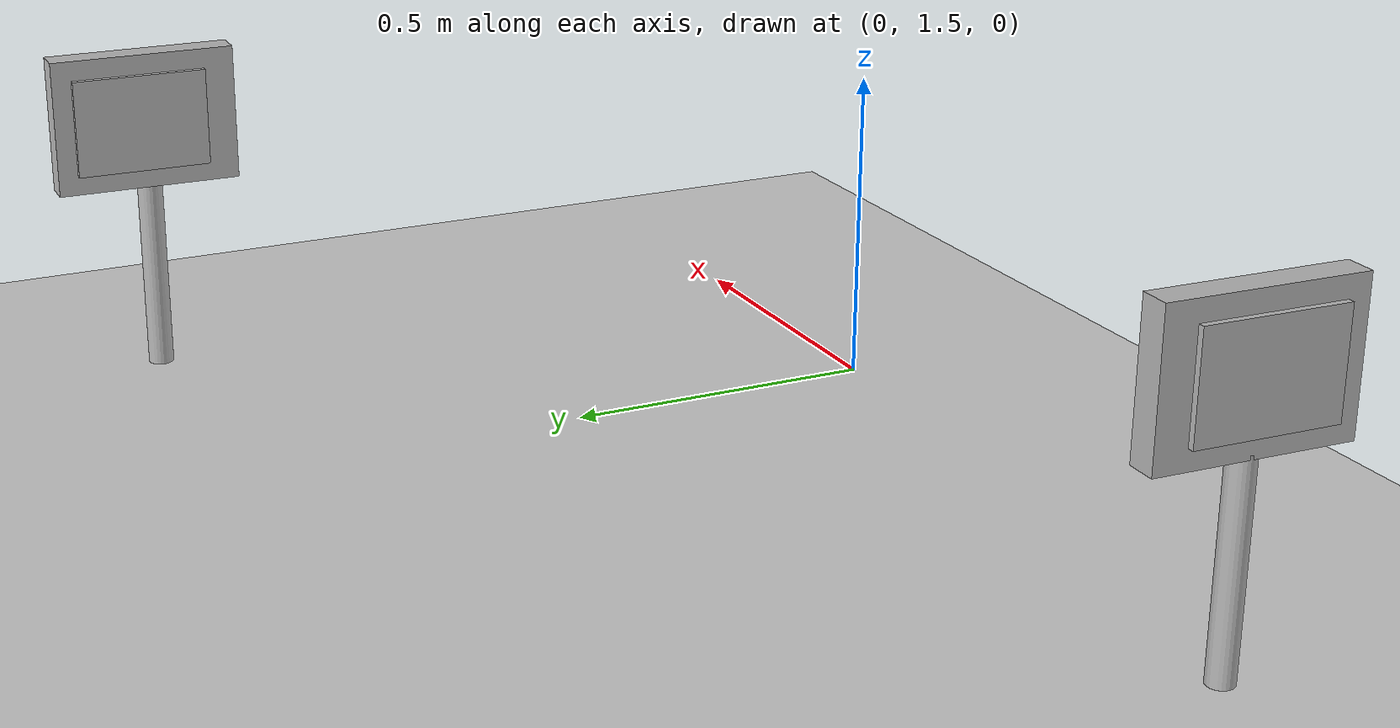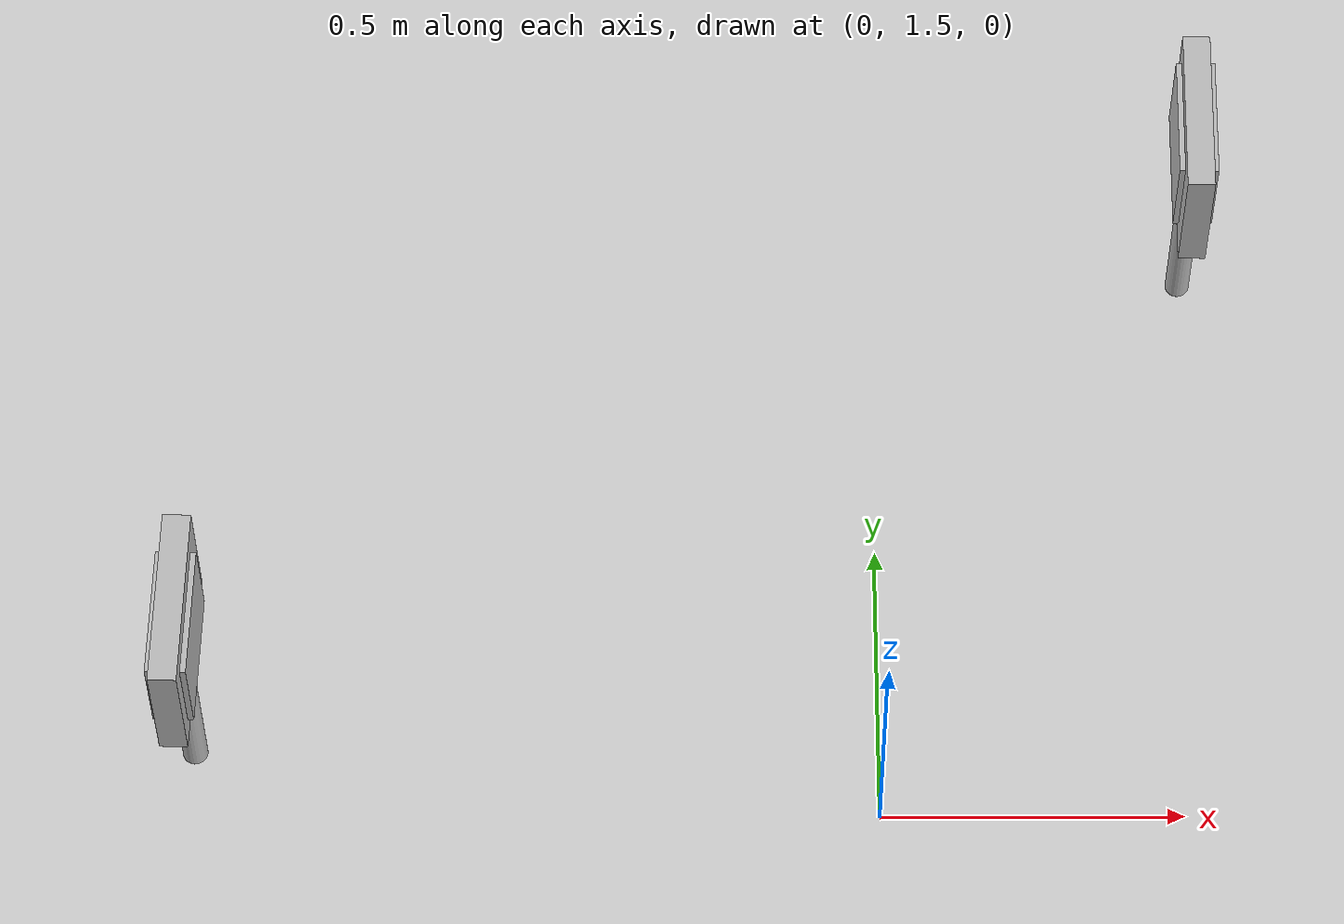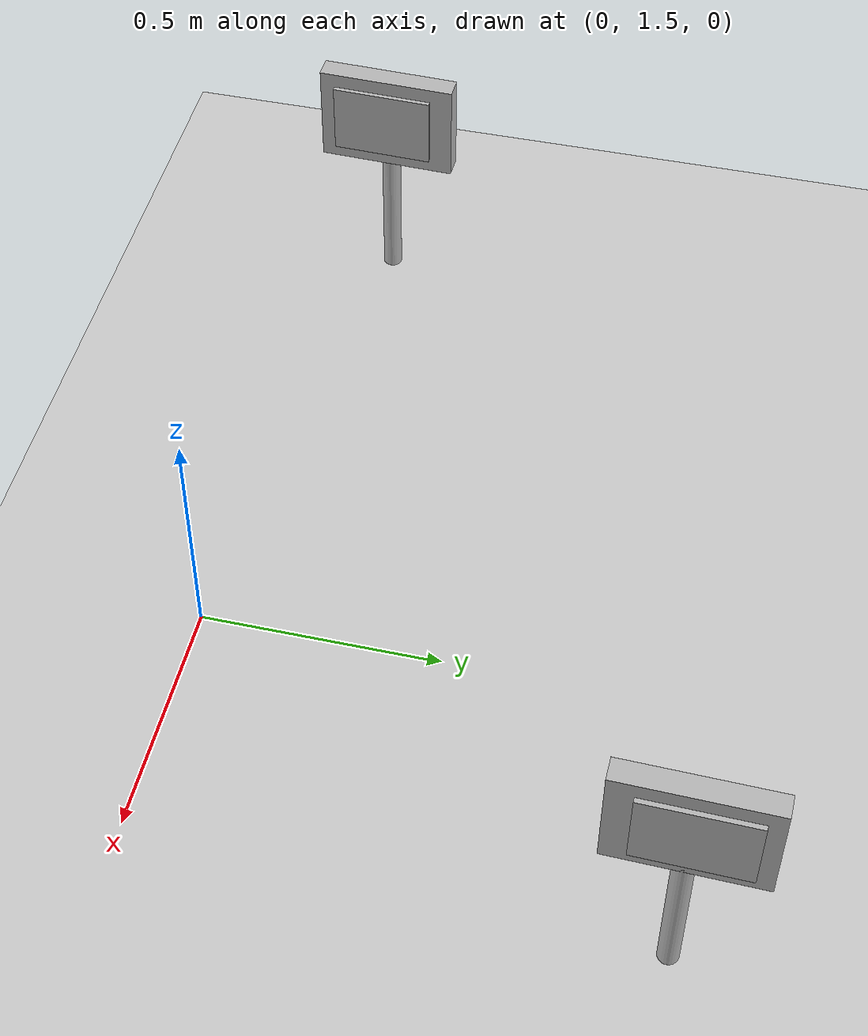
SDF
<sdf version="1.7">
 <world name="default">
  <model name="ground_plane">
   <static>1</static>
   <link name="link">
    <collision name="collision">
     <geometry><plane><normal>0 0 1</normal><size>100 100</size></plane></geometry>
     <surface>
      <contact><collide_bitmask>65535</collide_bitmask></contact>
      <friction><ode><mu>100</mu><mu2>50</mu2></ode></friction>
     </surface>
    </collision>
    <visual name="visual">
     <cast_shadows>0</cast_shadows>
     <geometry><plane><normal>0 0 1</normal><size>100 100</size></plane></geometry>
     <material>
      <script><uri>file://media/materials/scripts/gazebo.material</uri><name>Gazebo/Grey</name></script>
     </material>
    </visual>
   </link>
  </model>
  <model name="letrero_pajaro_0">
   <link name="link_0">
    <inertial>
     <mass>0.0543151</mass>
     <inertia>
      <ixx>4.90351e-06</ixx>
      <ixy>0</ixy>
      <ixz>0</ixz>
      <iyy>4.90351e-06</iyy>
      <iyz>0</iyz>
      <izz>1.12837e-07</izz>
     </inertia>
    </inertial>
    <pose>0.002515 0.005109 0.153562 0 -0 0</pose>
    <visual name="visual">
     <geometry><cylinder><radius>0.0203836</radius><length>0.327243</length></cylinder></geometry>
     <material>
      <lighting>1</lighting>
      <script>
       <uri>model://letrero_pajaro/madera/scripts</uri>
       <uri>model://letrero_pajaro/madera/textures</uri>
       <name>textur/madera</name>
      </script>
      <shader type="pixel"/>
      <emissive>0 0 0 1</emissive>
     </material>
    </visual>
    <collision name="collision">
     <geometry><cylinder><radius>0.020384</radius><length>0.327243</length></cylinder></geometry>
     <surface>
      <friction>
       <ode><mu>1</mu><mu2>1</mu2><fdir1>0 0 0</fdir1><slip1>0</slip1><slip2>0</slip2></ode>
       <torsional>
        <coefficient>1</coefficient>
        <patch_radius>0</patch_radius>
        <surface_radius>0</surface_radius>
        <use_patch_radius>1</use_patch_radius>
        <ode><slip>0</slip></ode>
       </torsional>
      </friction>
      <bounce><restitution_coefficient>0</restitution_coefficient><threshold>1e+06</threshold></bounce>
      <contact>
       <collide_without_contact>0</collide_without_contact>
       <collide_without_contact_bitmask>1</collide_without_contact_bitmask>
       <collide_bitmask>1</collide_bitmask>
       <ode>
        <soft_cfm>0</soft_cfm>
        <soft_erp>0.2</soft_erp>
        <kp>1e+13</kp>
        <kd>1</kd>
        <max_vel>0.01</max_vel>
        <min_depth>0</min_depth>
       </ode>
       <bullet>
        <split_impulse>1</split_impulse>
        <split_impulse_penetration_threshold>-0.01</split_impulse_penetration_threshold>
        <soft_cfm>0</soft_cfm>
        <soft_erp>0.2</soft_erp>
        <kp>1e+13</kp>
        <kd>1</kd>
       </bullet>
      </contact>
     </surface>
    </collision>
   </link>
   <link name="link_1">
    <inertial>
     <mass>0.00299633</mass>
     <inertia>
      <ixx>1.27855e-05</ixx>
      <ixy>0</ixy>
      <ixz>0</ixz>
      <iyy>3.42923e-05</iyy>
      <iyz>0</iyz>
      <izz>2.25402e-05</izz>
     </inertia>
    </inertial>
    <pose>-0.001542 0.002452 0.422031 0 -0 0</pose>
    <visual name="visual">
     <geometry><box><size>0.296988 0.04549 0.221665</size></box></geometry>
     <material>
      <lighting>1</lighting>
      <script>
       <uri>model://letrero_pajaro/madera/scripts</uri>
       <uri>model://letrero_pajaro/madera/textures</uri>
       <name>textur/madera</name>
      </script>
      <shader type="pixel"/>
      <emissive>0 0 0 1</emissive>
     </material>
    </visual>
    <collision name="collision">
     <geometry><box><size>0.296988 0.04549 0.221665</size></box></geometry>
     <surface>
      <friction>
       <ode><mu>1</mu><mu2>1</mu2><fdir1>0 0 0</fdir1><slip1>0</slip1><slip2>0</slip2></ode>
       <torsional>
        <coefficient>1</coefficient>
        <patch_radius>0</patch_radius>
        <surface_radius>0</surface_radius>
        <use_patch_radius>1</use_patch_radius>
        <ode><slip>0</slip></ode>
       </torsional>
      </friction>
      <bounce><restitution_coefficient>0</restitution_coefficient><threshold>1e+06</threshold></bounce>
      <contact>
       <collide_without_contact>0</collide_without_contact>
       <collide_without_contact_bitmask>1</collide_without_contact_bitmask>
       <collide_bitmask>1</collide_bitmask>
       <ode>
        <soft_cfm>0</soft_cfm>
        <soft_erp>0.2</soft_erp>
        <kp>1e+13</kp>
        <kd>1</kd>
        <max_vel>0.01</max_vel>
        <min_depth>0</min_depth>
       </ode>
       <bullet>
        <split_impulse>1</split_impulse>
        <split_impulse_penetration_threshold>-0.01</split_impulse_penetration_threshold>
        <soft_cfm>0</soft_cfm>
        <soft_erp>0.2</soft_erp>
        <kp>1e+13</kp>
        <kd>1</kd>
       </bullet>
      </contact>
     </surface>
    </collision>
   </link>
   <link name="link_2">
    <inertial>
     <mass>0.00173577</mass>
     <inertia>
      <ixx>4.23206e-06</ixx>
      <ixy>0</ixy>
      <ixz>0</ixz>
      <iyy>1.03921e-05</iyy>
      <iyz>0</iyz>
      <izz>7.37287e-06</izz>
     </inertia>
    </inertial>
    <pose>-0.010225 0.002657 0.421501 0 -0 0</pose>
    <visual name="visual">
     <geometry><box><size>0.216284 0.064749 0.15832</size></box></geometry>
     <material>
      <lighting>1</lighting>
      <script>
       <uri>model://letrero_pajaro/materials/scripts</uri>
       <uri>model://letrero_pajaro/materials/textures</uri>
       <name>textur/paj</name>
      </script>
      <shader type="pixel"/>
      <emissive>0 0 0 1</emissive>
     </material>
    </visual>
    <collision name="collision">
     <geometry><box><size>0.216284 0.064749 0.15832</size></box></geometry>
     <surface>
      <friction>
       <ode><mu>1</mu><mu2>1</mu2><fdir1>0 0 0</fdir1><slip1>0</slip1><slip2>0</slip2></ode>
       <torsional>
        <coefficient>1</coefficient>
        <patch_radius>0</patch_radius>
        <surface_radius>0</surface_radius>
        <use_patch_radius>1</use_patch_radius>
        <ode><slip>0</slip></ode>
       </torsional>
      </friction>
      <bounce><restitution_coefficient>0</restitution_coefficient><threshold>1e+06</threshold></bounce>
      <contact>
       <collide_without_contact>0</collide_without_contact>
       <collide_without_contact_bitmask>1</collide_without_contact_bitmask>
       <collide_bitmask>1</collide_bitmask>
       <ode>
        <soft_cfm>0</soft_cfm>
        <soft_erp>0.2</soft_erp>
        <kp>1e+13</kp>
        <kd>1</kd>
        <max_vel>0.01</max_vel>
        <min_depth>0</min_depth>
       </ode>
       <bullet>
        <split_impulse>1</split_impulse>
        <split_impulse_penetration_threshold>-0.01</split_impulse_penetration_threshold>
        <soft_cfm>0</soft_cfm>
        <soft_erp>0.2</soft_erp>
        <kp>1e+13</kp>
        <kd>1</kd>
       </bullet>
      </contact>
     </surface>
    </collision>
   </link>
   <joint name="link_0_JOINT_1" type="fixed">
    <parent>link_0</parent>
    <child>link_1</child>
    <physics>
     <ode><limit><cfm>0</cfm><erp>0.2</erp></limit><suspension><cfm>0</cfm><erp>0.2</erp></suspension></ode>
    </physics>
   </joint>
   <joint name="link_0_JOINT_2" type="fixed">
    <parent>link_0</parent>
    <child>link_2</child>
    <physics>
     <ode><limit><cfm>0</cfm><erp>0.2</erp></limit><suspension><cfm>0</cfm><erp>0.2</erp></suspension></ode>
    </physics>
   </joint>
   <static>1</static>
   <pose>-1.12526 1.62205 0 0 -0 1.53987</pose>
  </model>
  <model name="letrero_fresas_II_1">
   <link name="link_0">
    <inertial>
     <mass>0.0543151</mass>
     <inertia>
      <ixx>4.90351e-06</ixx>
      <ixy>0</ixy>
      <ixz>0</ixz>
      <iyy>4.90351e-06</iyy>
      <iyz>0</iyz>
      <izz>1.12837e-07</izz>
     </inertia>
    </inertial>
    <pose>0.002515 0.005109 0.153562 0 -0 0</pose>
    <visual name="visual">
     <geometry><cylinder><radius>0.0203836</radius><length>0.327243</length></cylinder></geometry>
     <material>
      <lighting>1</lighting>
      <script>
       <uri>model://letrero_fresas_II/madera/scripts</uri>
       <uri>model://letrero_fresas_II/madera/textures</uri>
       <name>textur/madera</name>
      </script>
      <shader type="pixel"/>
      <emissive>0 0 0 1</emissive>
     </material>
    </visual>
    <collision name="collision">
     <geometry><cylinder><radius>0.020384</radius><length>0.327243</length></cylinder></geometry>
     <surface>
      <friction>
       <ode><mu>1</mu><mu2>1</mu2><fdir1>0 0 0</fdir1><slip1>0</slip1><slip2>0</slip2></ode>
       <torsional>
        <coefficient>1</coefficient>
        <patch_radius>0</patch_radius>
        <surface_radius>0</surface_radius>
        <use_patch_radius>1</use_patch_radius>
        <ode><slip>0</slip></ode>
       </torsional>
      </friction>
      <bounce><restitution_coefficient>0</restitution_coefficient><threshold>1e+06</threshold></bounce>
      <contact>
       <collide_without_contact>0</collide_without_contact>
       <collide_without_contact_bitmask>1</collide_without_contact_bitmask>
       <collide_bitmask>1</collide_bitmask>
       <ode>
        <soft_cfm>0</soft_cfm>
        <soft_erp>0.2</soft_erp>
        <kp>1e+13</kp>
        <kd>1</kd>
        <max_vel>0.01</max_vel>
        <min_depth>0</min_depth>
       </ode>
       <bullet>
        <split_impulse>1</split_impulse>
        <split_impulse_penetration_threshold>-0.01</split_impulse_penetration_threshold>
        <soft_cfm>0</soft_cfm>
        <soft_erp>0.2</soft_erp>
        <kp>1e+13</kp>
        <kd>1</kd>
       </bullet>
      </contact>
     </surface>
    </collision>
   </link>
   <link name="link_1">
    <inertial>
     <mass>0.00299633</mass>
     <inertia>
      <ixx>1.27855e-05</ixx>
      <ixy>0</ixy>
      <ixz>0</ixz>
      <iyy>3.42923e-05</iyy>
      <iyz>0</iyz>
      <izz>2.25402e-05</izz>
     </inertia>
    </inertial>
    <pose>-0.001542 0.002452 0.422031 0 -0 0</pose>
    <visual name="visual">
     <geometry><box><size>0.296988 0.04549 0.221665</size></box></geometry>
     <material>
      <lighting>1</lighting>
      <script>
       <uri>model://letrero_fresas_II/madera/scripts</uri>
       <uri>model://letrero_fresas_II/madera/textures</uri>
       <name>textur/madera</name>
      </script>
      <shader type="pixel"/>
      <emissive>0 0 0 1</emissive>
     </material>
    </visual>
    <collision name="collision">
     <geometry><box><size>0.296988 0.04549 0.221665</size></box></geometry>
     <surface>
      <friction>
       <ode><mu>1</mu><mu2>1</mu2><fdir1>0 0 0</fdir1><slip1>0</slip1><slip2>0</slip2></ode>
       <torsional>
        <coefficient>1</coefficient>
        <patch_radius>0</patch_radius>
        <surface_radius>0</surface_radius>
        <use_patch_radius>1</use_patch_radius>
        <ode><slip>0</slip></ode>
       </torsional>
      </friction>
      <bounce><restitution_coefficient>0</restitution_coefficient><threshold>1e+06</threshold></bounce>
      <contact>
       <collide_without_contact>0</collide_without_contact>
       <collide_without_contact_bitmask>1</collide_without_contact_bitmask>
       <collide_bitmask>1</collide_bitmask>
       <ode>
        <soft_cfm>0</soft_cfm>
        <soft_erp>0.2</soft_erp>
        <kp>1e+13</kp>
        <kd>1</kd>
        <max_vel>0.01</max_vel>
        <min_depth>0</min_depth>
       </ode>
       <bullet>
        <split_impulse>1</split_impulse>
        <split_impulse_penetration_threshold>-0.01</split_impulse_penetration_threshold>
        <soft_cfm>0</soft_cfm>
        <soft_erp>0.2</soft_erp>
        <kp>1e+13</kp>
        <kd>1</kd>
       </bullet>
      </contact>
     </surface>
    </collision>
   </link>
   <link name="link_2">
    <inertial>
     <mass>0.00173577</mass>
     <inertia>
      <ixx>4.23206e-06</ixx>
      <ixy>0</ixy>
      <ixz>0</ixz>
      <iyy>1.03921e-05</iyy>
      <iyz>0</iyz>
      <izz>7.37287e-06</izz>
     </inertia>
    </inertial>
    <pose>-0.010225 0.002657 0.421501 0 -0 0</pose>
    <visual name="visual">
     <geometry><box><size>0.216284 0.064749 0.15832</size></box></geometry>
     <material>
      <lighting>1</lighting>
      <script>
       <uri>model://letrero_fresas_II/materials/scripts</uri>
       <uri>model://letrero_fresas_II/materials/textures</uri>
       <name>textur/difres</name>
      </script>
      <shader type="pixel"/>
      <emissive>0 0 0 1</emissive>
     </material>
    </visual>
    <collision name="collision">
     <geometry><box><size>0.216284 0.064749 0.15832</size></box></geometry>
     <surface>
      <friction>
       <ode><mu>1</mu><mu2>1</mu2><fdir1>0 0 0</fdir1><slip1>0</slip1><slip2>0</slip2></ode>
       <torsional>
        <coefficient>1</coefficient>
        <patch_radius>0</patch_radius>
        <surface_radius>0</surface_radius>
        <use_patch_radius>1</use_patch_radius>
        <ode><slip>0</slip></ode>
       </torsional>
      </friction>
      <bounce><restitution_coefficient>0</restitution_coefficient><threshold>1e+06</threshold></bounce>
      <contact>
       <collide_without_contact>0</collide_without_contact>
       <collide_without_contact_bitmask>1</collide_without_contact_bitmask>
       <collide_bitmask>1</collide_bitmask>
       <ode>
        <soft_cfm>0</soft_cfm>
        <soft_erp>0.2</soft_erp>
        <kp>1e+13</kp>
        <kd>1</kd>
        <max_vel>0.01</max_vel>
        <min_depth>0</min_depth>
       </ode>
       <bullet>
        <split_impulse>1</split_impulse>
        <split_impulse_penetration_threshold>-0.01</split_impulse_penetration_threshold>
        <soft_cfm>0</soft_cfm>
        <soft_erp>0.2</soft_erp>
        <kp>1e+13</kp>
        <kd>1</kd>
       </bullet>
      </contact>
     </surface>
    </collision>
   </link>
   <joint name="link_0_JOINT_1" type="fixed">
    <parent>link_0</parent>
    <child>link_1</child>
    <physics>
     <ode><limit><cfm>0</cfm><erp>0.2</erp></limit><suspension><cfm>0</cfm><erp>0.2</erp></suspension></ode>
    </physics>
   </joint>
   <joint name="link_0_JOINT_2" type="fixed">
    <parent>link_0</parent>
    <child>link_2</child>
    <physics>
     <ode><limit><cfm>0</cfm><erp>0.2</erp></limit><suspension><cfm>0</cfm><erp>0.2</erp></suspension></ode>
    </physics>
   </joint>
   <static>1</static>
   <pose>0.532375 2.53818 0 0 0 -1.59075</pose>
  </model>
 </world>
</sdf>
